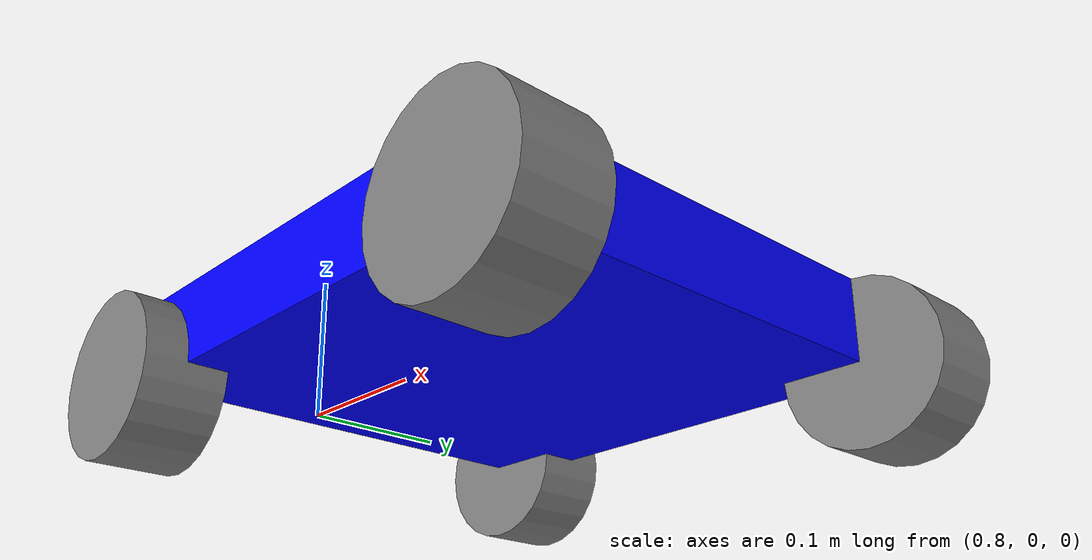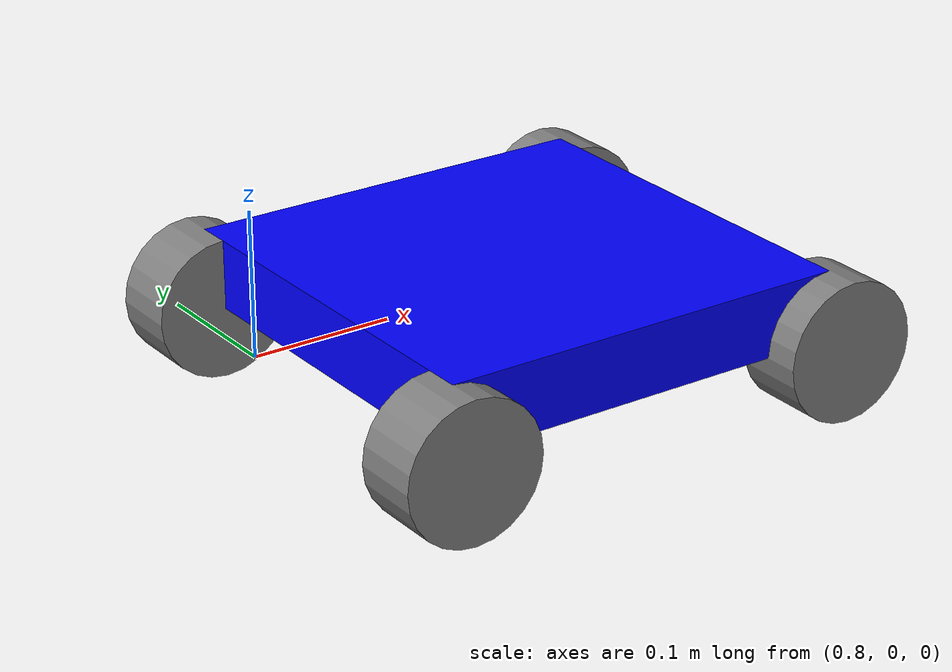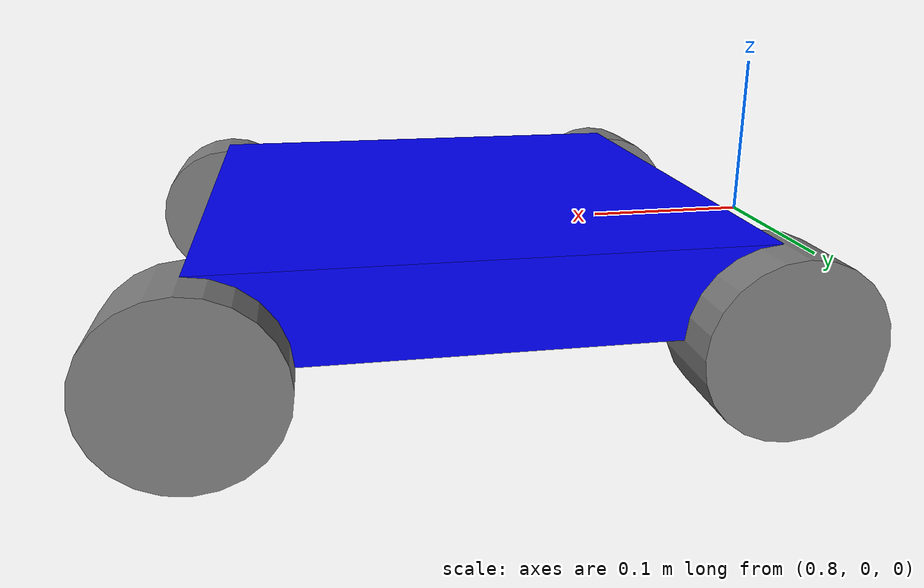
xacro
<?xml version="1.0"?>
<robot xmlns:xacro="http://ros.org/wiki/xacro" name="4wd_omni_robot">

  <link name="world"> </link>

  <joint name="world_joint" type="fixed">
    <parent link="world"/>
    <child link="base_link"/>
    <origin xyz="1 0 0" rpy="0 0 0"/>
  </joint>

  <!-- Base structure -->
  <link name="base_link">
    <visual>
      <geometry>
        <box size="0.3 0.3 0.05"/>
      </geometry>
      <material name="blue">
        <color rgba="0.0 0.0 1.0 1.0"/>
      </material>
    </visual>
    <collision>
      <geometry>
        <box size="0.3 0.3 0.05"/>
      </geometry>
    </collision>
  </link>

  <!-- Omni Wheel Macro -->
  <xacro:macro name="omni_wheel" params="name x y z rpy">
    <link name="${name}_link">
      <visual>
        <geometry>
          <cylinder length="0.05" radius="0.05"/>
        </geometry>
        <material name="grey">
          <color rgba="0.5 0.5 0.5 1.0"/>
        </material>
      </visual>
      <collision>
        <geometry>
          <cylinder length="0.05" radius="0.05"/>
        </geometry>
      </collision>
    </link>

    <joint name="${name}_joint" type="continuous">
      <parent link="base_link"/>
      <child link="${name}_link"/>
      <origin xyz="${x} ${y} ${z}" rpy="${rpy}"/>
      <axis xyz="0 0 1"/>
    </joint>
  </xacro:macro>

  <!-- Omni Wheels -->
  <xacro:omni_wheel name="front_left_wheel" x="0.15" y="0.15" z="-0.025" rpy="${pi/2} 0 0"/>
  <xacro:omni_wheel name="front_right_wheel" x="0.15" y="-0.15" z="-0.025" rpy="${pi/2} 0 0"/>
  <xacro:omni_wheel name="rear_left_wheel" x="-0.15" y="0.15" z="-0.025" rpy="${pi/2} 0 0"/>
  <xacro:omni_wheel name="rear_right_wheel" x="-0.15" y="-0.15" z="-0.025" rpy="${pi/2} 0 0"/>

</robot>
